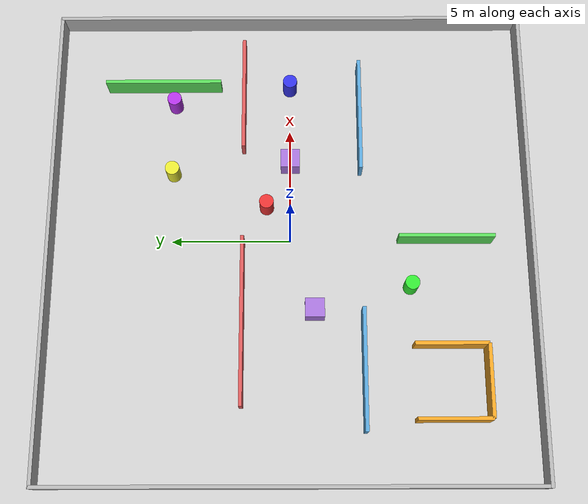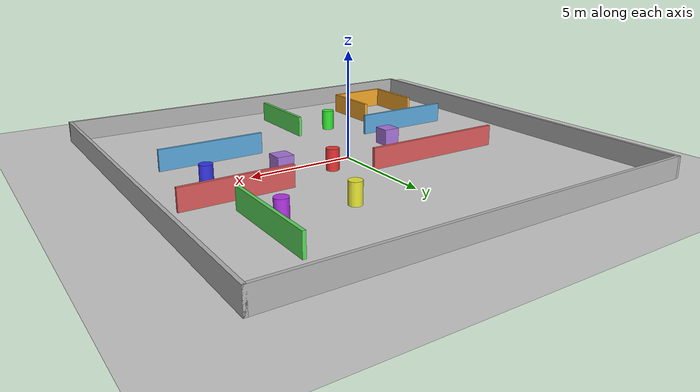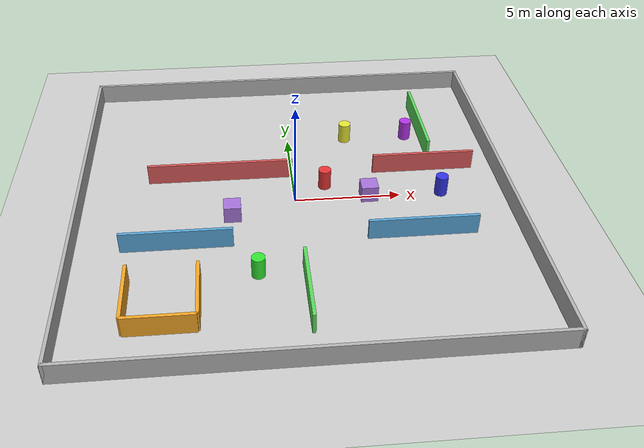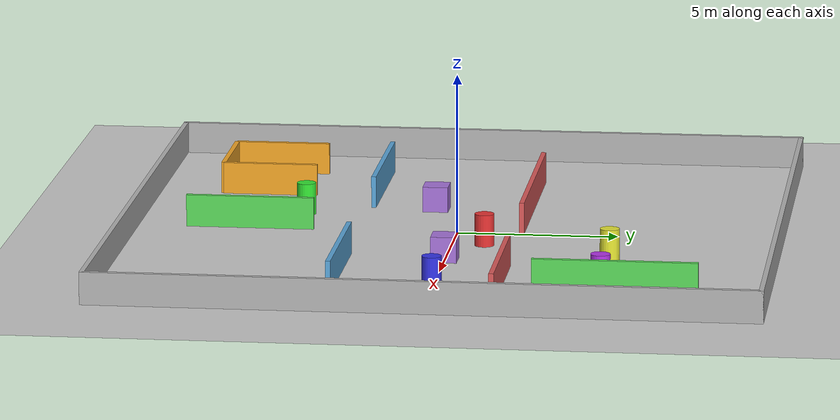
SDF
<?xml version="1.0" ?>
<sdf version="1.8">
  <world name="complex_nav_world">

    <physics name="1ms" type="ode">
      <max_step_size>0.001</max_step_size>
      <real_time_factor>1.0</real_time_factor>
      <real_time_update_rate>1000</real_time_update_rate>
    </physics>

    <plugin filename="gz-sim-physics-system" name="gz::sim::systems::Physics"/>
    <plugin filename="gz-sim-scene-broadcaster-system" name="gz::sim::systems::SceneBroadcaster"/>
    <plugin filename="gz-sim-user-commands-system" name="gz::sim::systems::UserCommands"/>
    <plugin filename="gz-sim-sensors-system" name="gz::sim::systems::Sensors">
      <render_engine>ogre2</render_engine>
    </plugin>
    <plugin filename="gz-sim-imu-system" name="gz::sim::systems::Imu"/>
    <plugin filename="gz-sim-contact-system" name="gz::sim::systems::Contact"/>

    <light type="directional" name="sun">
      <cast_shadows>true</cast_shadows>
      <pose>0 0 10 0 0 0</pose>
      <diffuse>0.8 0.8 0.8 1</diffuse>
      <specular>0.2 0.2 0.2 1</specular>
      <attenuation>
        <range>1000</range>
        <constant>0.9</constant>
        <linear>0.01</linear>
        <quadratic>0.001</quadratic>
      </attenuation>
      <direction>-0.5 0.1 -0.9</direction>
    </light>

    <!-- ============ 地面 ============ -->
    <model name="ground_plane">
      <static>true</static>
      <link name="link">
        <collision name="collision">
          <geometry>
            <plane>
              <normal>0 0 1</normal>
              <size>30 30</size>
            </plane>
          </geometry>
        </collision>
        <visual name="visual">
          <geometry>
            <plane>
              <normal>0 0 1</normal>
              <size>30 30</size>
            </plane>
          </geometry>
          <material>
            <ambient>0.8 0.8 0.8 1</ambient>
            <diffuse>0.8 0.8 0.8 1</diffuse>
          </material>
        </visual>
      </link>
    </model>

    <!-- ============ 外围边界墙 (20m x 20m) ============ -->

    <model name="wall_north">
      <static>true</static>
      <pose>0 10.075 0.5 0 0 0</pose>
      <link name="link">
        <collision name="collision">
          <geometry><box><size>20.3 0.15 1.0</size></box></geometry>
        </collision>
        <visual name="visual">
          <geometry><box><size>20.3 0.15 1.0</size></box></geometry>
          <material>
            <ambient>0.6 0.6 0.6 1</ambient>
            <diffuse>0.7 0.7 0.7 1</diffuse>
          </material>
        </visual>
      </link>
    </model>

    <model name="wall_south">
      <static>true</static>
      <pose>0 -10.075 0.5 0 0 0</pose>
      <link name="link">
        <collision name="collision">
          <geometry><box><size>20.3 0.15 1.0</size></box></geometry>
        </collision>
        <visual name="visual">
          <geometry><box><size>20.3 0.15 1.0</size></box></geometry>
          <material>
            <ambient>0.6 0.6 0.6 1</ambient>
            <diffuse>0.7 0.7 0.7 1</diffuse>
          </material>
        </visual>
      </link>
    </model>

    <model name="wall_east">
      <static>true</static>
      <pose>10.075 0 0.5 0 0 0</pose>
      <link name="link">
        <collision name="collision">
          <geometry><box><size>0.15 20.3 1.0</size></box></geometry>
        </collision>
        <visual name="visual">
          <geometry><box><size>0.15 20.3 1.0</size></box></geometry>
          <material>
            <ambient>0.6 0.6 0.6 1</ambient>
            <diffuse>0.7 0.7 0.7 1</diffuse>
          </material>
        </visual>
      </link>
    </model>

    <model name="wall_west">
      <static>true</static>
      <pose>-10.075 0 0.5 0 0 0</pose>
      <link name="link">
        <collision name="collision">
          <geometry><box><size>0.15 20.3 1.0</size></box></geometry>
        </collision>
        <visual name="visual">
          <geometry><box><size>0.15 20.3 1.0</size></box></geometry>
          <material>
            <ambient>0.6 0.6 0.6 1</ambient>
            <diffuse>0.7 0.7 0.7 1</diffuse>
          </material>
        </visual>
      </link>
    </model>

    <!-- ============ 中央横墙 y=2（缺口 x: 0~4）============ -->

    <!-- 左半段 中心(-3.5, 2) 长7m -->
    <model name="wall_mid_left">
      <static>true</static>
      <pose>-3.5 2.0 0.5 0 0 0</pose>
      <link name="link">
        <collision name="collision">
          <geometry><box><size>7.0 0.15 1.0</size></box></geometry>
        </collision>
        <visual name="visual">
          <geometry><box><size>7.0 0.15 1.0</size></box></geometry>
          <material>
            <ambient>0.8 0.3 0.3 1</ambient>
            <diffuse>0.85 0.35 0.35 1</diffuse>
          </material>
        </visual>
      </link>
    </model>

    <!-- 右半段 中心(6.5, 2) 长5m -->
    <model name="wall_mid_right">
      <static>true</static>
      <pose>6.5 2.0 0.5 0 0 0</pose>
      <link name="link">
        <collision name="collision">
          <geometry><box><size>5.0 0.15 1.0</size></box></geometry>
        </collision>
        <visual name="visual">
          <geometry><box><size>5.0 0.15 1.0</size></box></geometry>
          <material>
            <ambient>0.8 0.3 0.3 1</ambient>
            <diffuse>0.85 0.35 0.35 1</diffuse>
          </material>
        </visual>
      </link>
    </model>

    <!-- ============ 下方横墙 y=-3（缺口 x: -3~3）============ -->

    <!-- 左段 中心(-5.5, -3) 长5m -->
    <model name="wall_low_left">
      <static>true</static>
      <pose>-5.5 -3.0 0.5 0 0 0</pose>
      <link name="link">
        <collision name="collision">
          <geometry><box><size>5.0 0.15 1.0</size></box></geometry>
        </collision>
        <visual name="visual">
          <geometry><box><size>5.0 0.15 1.0</size></box></geometry>
          <material>
            <ambient>0.3 0.6 0.8 1</ambient>
            <diffuse>0.35 0.65 0.85 1</diffuse>
          </material>
        </visual>
      </link>
    </model>

    <!-- 右段 中心(5.5, -3) 长5m -->
    <model name="wall_low_right">
      <static>true</static>
      <pose>5.5 -3.0 0.5 0 0 0</pose>
      <link name="link">
        <collision name="collision">
          <geometry><box><size>5.0 0.15 1.0</size></box></geometry>
        </collision>
        <visual name="visual">
          <geometry><box><size>5.0 0.15 1.0</size></box></geometry>
          <material>
            <ambient>0.3 0.6 0.8 1</ambient>
            <diffuse>0.35 0.65 0.85 1</diffuse>
          </material>
        </visual>
      </link>
    </model>

    <!-- ============ U形陷阱（左下角，开口朝上）============ -->

    <!-- U形左壁 x=-7.5 竖向 -->
    <model name="utrap_left">
      <static>true</static>
      <pose>-7.5 -6.5 0.5 0 0 0</pose>
      <link name="link">
        <collision name="collision">
          <geometry><box><size>0.15 3.0 1.0</size></box></geometry>
        </collision>
        <visual name="visual">
          <geometry><box><size>0.15 3.0 1.0</size></box></geometry>
          <material>
            <ambient>0.9 0.6 0.1 1</ambient>
            <diffuse>0.95 0.65 0.15 1</diffuse>
          </material>
        </visual>
      </link>
    </model>

    <!-- U形底壁 y=-8 横向 -->
    <model name="utrap_bottom">
      <static>true</static>
      <pose>-6.0 -8.0 0.5 0 0 0</pose>
      <link name="link">
        <collision name="collision">
          <geometry><box><size>3.0 0.15 1.0</size></box></geometry>
        </collision>
        <visual name="visual">
          <geometry><box><size>3.0 0.15 1.0</size></box></geometry>
          <material>
            <ambient>0.9 0.6 0.1 1</ambient>
            <diffuse>0.95 0.65 0.15 1</diffuse>
          </material>
        </visual>
      </link>
    </model>

    <!-- U形右壁 x=-4.5 竖向 -->
    <model name="utrap_right">
      <static>true</static>
      <pose>-4.5 -6.5 0.5 0 0 0</pose>
      <link name="link">
        <collision name="collision">
          <geometry><box><size>0.15 3.0 1.0</size></box></geometry>
        </collision>
        <visual name="visual">
          <geometry><box><size>0.15 3.0 1.0</size></box></geometry>
          <material>
            <ambient>0.9 0.6 0.1 1</ambient>
            <diffuse>0.95 0.65 0.15 1</diffuse>
          </material>
        </visual>
      </link>
    </model>

    <!-- ============ 竖墙（制造通道）============ -->

    <!-- 中央竖墙 x=0 -->
    <model name="wall_vert_center">
      <static>true</static>
      <pose>0 -6.5 0.5 0 0 0</pose>
      <link name="link">
        <collision name="collision">
          <geometry><box><size>0.15 4.0 1.0</size></box></geometry>
        </collision>
        <visual name="visual">
          <geometry><box><size>0.15 4.0 1.0</size></box></geometry>
          <material>
            <ambient>0.3 0.8 0.3 1</ambient>
            <diffuse>0.35 0.85 0.35 1</diffuse>
          </material>
        </visual>
      </link>
    </model>

    <!-- 右侧竖墙 x=7 -->
    <model name="wall_vert_right">
      <static>true</static>
      <pose>7.0 5.5 0.5 0 0 0</pose>
      <link name="link">
        <collision name="collision">
          <geometry><box><size>0.15 5.0 1.0</size></box></geometry>
        </collision>
        <visual name="visual">
          <geometry><box><size>0.15 5.0 1.0</size></box></geometry>
          <material>
            <ambient>0.3 0.8 0.3 1</ambient>
            <diffuse>0.35 0.85 0.35 1</diffuse>
          </material>
        </visual>
      </link>
    </model>

    <!-- ============ 方柱障碍 ============ -->

    <model name="pillar_1">
      <static>true</static>
      <pose>3.5 0.0 0.4 0 0 0</pose>
      <link name="link">
        <collision name="collision">
          <geometry><box><size>0.8 0.8 0.8</size></box></geometry>
        </collision>
        <visual name="visual">
          <geometry><box><size>0.8 0.8 0.8</size></box></geometry>
          <material>
            <ambient>0.6 0.4 0.8 1</ambient>
            <diffuse>0.65 0.45 0.85 1</diffuse>
          </material>
        </visual>
      </link>
    </model>

    <model name="pillar_2">
      <static>true</static>
      <pose>-3.0 -1.0 0.4 0 0 0</pose>
      <link name="link">
        <collision name="collision">
          <geometry><box><size>0.8 0.8 0.8</size></box></geometry>
        </collision>
        <visual name="visual">
          <geometry><box><size>0.8 0.8 0.8</size></box></geometry>
          <material>
            <ambient>0.6 0.4 0.8 1</ambient>
            <diffuse>0.65 0.45 0.85 1</diffuse>
          </material>
        </visual>
      </link>
    </model>

    <!-- ============ 3个行人 (圆柱体, static=false) ============ -->

    <!-- 行人1: 红色, 中央缺口附近 -->
    <model name="pedestrian_1">
      <static>false</static>
      <pose>1.5 1.0 0.5 0 0 0</pose>
      <link name="base_link">
        <inertial>
          <mass>20.0</mass>
          <inertia>
            <ixx>0.5</ixx><ixy>0</ixy><ixz>0</ixz>
            <iyy>0.5</iyy><iyz>0</iyz>
            <izz>0.5</izz>
          </inertia>
        </inertial>
        <collision name="collision">
          <geometry>
            <cylinder>
              <radius>0.3</radius>
              <length>1.0</length>
            </cylinder>
          </geometry>
        </collision>
        <visual name="visual">
          <geometry>
            <cylinder>
              <radius>0.3</radius>
              <length>1.0</length>
            </cylinder>
          </geometry>
          <material>
            <ambient>0.9 0.2 0.2 1</ambient>
            <diffuse>0.9 0.2 0.2 1</diffuse>
          </material>
        </visual>
      </link>
    </model>

    <!-- 行人2: 绿色, 下方通道 -->
    <model name="pedestrian_2">
      <static>false</static>
      <pose>-2.0 -5.0 0.5 0 0 0</pose>
      <link name="base_link">
        <inertial>
          <mass>20.0</mass>
          <inertia>
            <ixx>0.5</ixx><ixy>0</ixy><ixz>0</ixz>
            <iyy>0.5</iyy><iyz>0</iyz>
            <izz>0.5</izz>
          </inertia>
        </inertial>
        <collision name="collision">
          <geometry>
            <cylinder>
              <radius>0.3</radius>
              <length>1.0</length>
            </cylinder>
          </geometry>
        </collision>
        <visual name="visual">
          <geometry>
            <cylinder>
              <radius>0.3</radius>
              <length>1.0</length>
            </cylinder>
          </geometry>
          <material>
            <ambient>0.2 0.9 0.2 1</ambient>
            <diffuse>0.2 0.9 0.2 1</diffuse>
          </material>
        </visual>
      </link>
    </model>

    <!-- 行人3: 蓝色, 右侧区域 -->
    <model name="pedestrian_3">
      <static>false</static>
      <pose>7.0 0.0 0.5 0 0 0</pose>
      <link name="base_link">
        <inertial>
          <mass>20.0</mass>
          <inertia>
            <ixx>0.5</ixx><ixy>0</ixy><ixz>0</ixz>
            <iyy>0.5</iyy><iyz>0</iyz>
            <izz>0.5</izz>
          </inertia>
        </inertial>
        <collision name="collision">
          <geometry>
            <cylinder>
              <radius>0.3</radius>
              <length>1.0</length>
            </cylinder>
          </geometry>
        </collision>
        <visual name="visual">
          <geometry>
            <cylinder>
              <radius>0.3</radius>
              <length>1.0</length>
            </cylinder>
          </geometry>
          <material>
            <ambient>0.2 0.2 0.9 1</ambient>
            <diffuse>0.2 0.2 0.9 1</diffuse>
          </material>
        </visual>
      </link>
    </model>
    <!-- 行人4: 黄色, 上方拦截 -->
    <model name="pedestrian_4">
      <static>false</static>
      <pose>3.0 5.0 0.5 0 0 0</pose>
      <link name="base_link">
        <inertial>
          <mass>20.0</mass>
          <inertia>
            <ixx>0.5</ixx><ixy>0</ixy><ixz>0</ixz>
            <iyy>0.5</iyy><iyz>0</iyz>
            <izz>0.5</izz>
          </inertia>
        </inertial>
        <collision name="collision">
          <geometry>
            <cylinder>
              <radius>0.3</radius>
              <length>1.0</length>
            </cylinder>
          </geometry>
        </collision>
        <visual name="visual">
          <geometry>
            <cylinder>
              <radius>0.3</radius>
              <length>1.0</length>
            </cylinder>
          </geometry>
          <material>
            <ambient>0.9 0.9 0.2 1</ambient>
            <diffuse>0.9 0.9 0.2 1</diffuse>
          </material>
        </visual>
      </link>
    </model>

    <!-- 行人5: 紫色, 右侧通道 -->
    <model name="pedestrian_5">
      <static>false</static>
      <pose>6.2 5.0 0.5 0 0 0</pose>
      <link name="base_link">
        <inertial>
          <mass>20.0</mass>
          <inertia>
            <ixx>0.5</ixx><ixy>0</ixy><ixz>0</ixz>
            <iyy>0.5</iyy><iyz>0</iyz>
            <izz>0.5</izz>
          </inertia>
        </inertial>
        <collision name="collision">
          <geometry>
            <cylinder>
              <radius>0.3</radius>
              <length>1.0</length>
            </cylinder>
          </geometry>
        </collision>
        <visual name="visual">
          <geometry>
            <cylinder>
              <radius>0.3</radius>
              <length>1.0</length>
            </cylinder>
          </geometry>
          <material>
            <ambient>0.7 0.2 0.9 1</ambient>
            <diffuse>0.7 0.2 0.9 1</diffuse>
          </material>
        </visual>
      </link>
    </model>
  </world>
</sdf>
